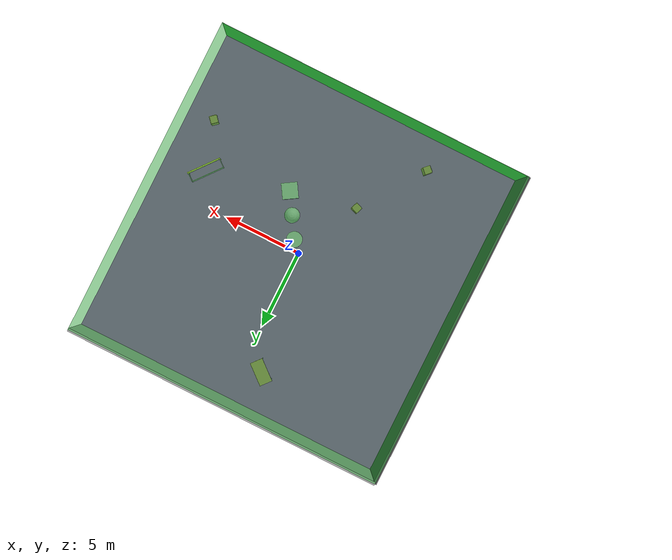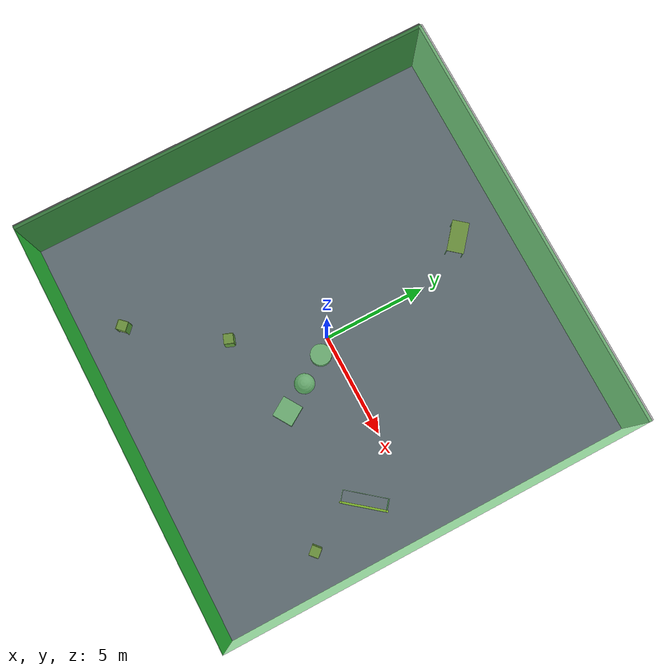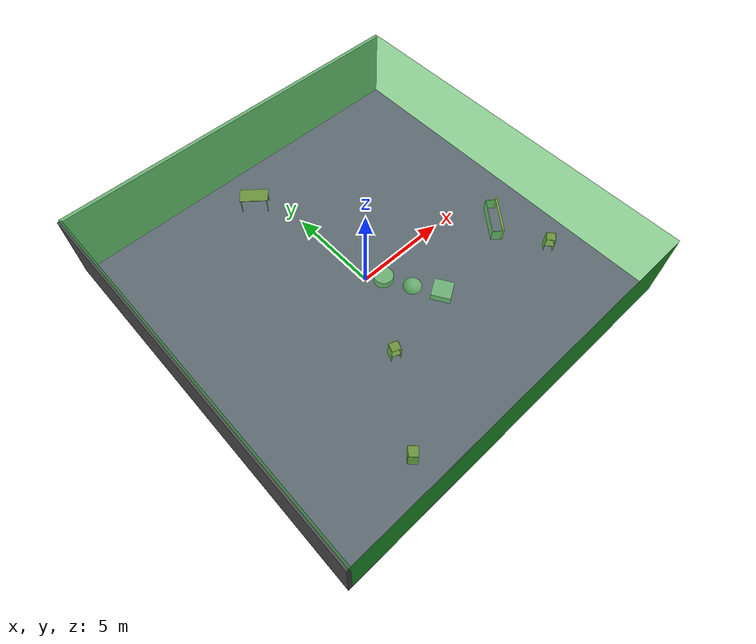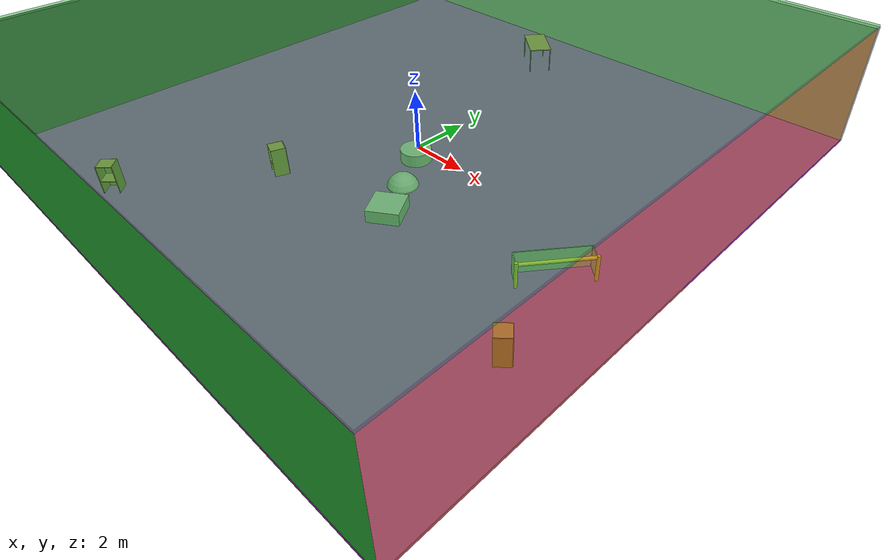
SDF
<sdf version="1.4">
 <world name="default">
  <physics type="ode">
   <max_step_size>0.001</max_step_size>
   <real_time_factor>1</real_time_factor>
   <real_time_update_rate>1000</real_time_update_rate>
   <gravity>0 0 -9.8</gravity>
  </physics>
  <scene><ambient>0.4 0.4 0.4 1</ambient><background>0.7 0.7 0.7 1</background><shadows>1</shadows></scene>
  <model name="Surrounding">
   <static>1</static>
   <link name="Ceiling">
    <collision name="Ceiling_Collision"><geometry><box><size>20 20 0.1</size></box></geometry></collision>
    <visual name="Ceiling_Visual">
     <geometry><box><size>20 20 0.1</size></box></geometry>
     <material>
      <script><uri>file://media/materials/scripts/gazebo.material</uri><name>Gazebo/GreenTransparent</name></script>
     </material>
    </visual>
    <pose>0 0 4.05 0 0 0</pose>
   </link>
   <link name="Wall_South">
    <collision name="Wall_South_Collision">
     <geometry><box><size>20 0 4</size></box></geometry>
     <pose>0 0 2 0 -0 0</pose>
    </collision>
    <visual name="Wall_South_Visual">
     <pose>0 0 2 0 -0 0</pose>
     <geometry><box><size>20 0 4</size></box></geometry>
     <material>
      <script><uri>file://media/materials/scripts/gazebo.material</uri><name>Gazebo/Green</name></script>
     </material>
    </visual>
    <velocity_decay><linear>0</linear><angular>0</angular></velocity_decay>
    <pose>0 -10 0 0 -0 0</pose>
   </link>
   <link name="Wall_East">
    <collision name="Wall_21_Collision">
     <geometry><box><size>20 0 4</size></box></geometry>
     <pose>0 0 2 0 -0 0</pose>
    </collision>
    <visual name="Wall_21_Visual">
     <pose>0 0 2 0 -0 0</pose>
     <geometry><box><size>20 0 4</size></box></geometry>
     <material>
      <script>
       <uri>file://media/materials/scripts/gazebo.material</uri>
       <name>Gazebo/OrangeTransparent</name>
      </script>
     </material>
    </visual>
    <velocity_decay><linear>0</linear><angular>0</angular></velocity_decay>
    <pose>10 0 0 0 -0 1.5708</pose>
   </link>
   <link name="Wall_North">
    <collision name="Wall_22_Collision">
     <geometry><box><size>20 0.2 4</size></box></geometry>
     <pose>0 0 2 0 -0 0</pose>
    </collision>
    <visual name="Wall_22_Visual">
     <pose>0 0 2 0 -0 0</pose>
     <geometry><box><size>20 0.2 4</size></box></geometry>
     <material>
      <script><uri>file://media/materials/scripts/gazebo.material</uri><name>Gazebo/LightOn</name></script>
     </material>
    </visual>
    <velocity_decay><linear>0</linear><angular>0</angular></velocity_decay>
    <pose>0 10 0 0 -0 0</pose>
   </link>
   <link name="Wall_West">
    <collision name="Wall_23_Collision">
     <geometry><box><size>20 0.2 4</size></box></geometry>
     <pose>0 0 2 0 -0 0</pose>
    </collision>
    <visual name="Wall_23_Visual">
     <pose>0 0 2 0 -0 0</pose>
     <geometry><box><size>20 0.2 4</size></box></geometry>
     <material>
      <script><uri>file://media/materials/scripts/gazebo.material</uri><name>Gazebo/DarkGrey</name></script>
     </material>
    </visual>
    <velocity_decay><linear>0</linear><angular>0</angular></velocity_decay>
    <pose>-10 0 0 0 0 -1.5708</pose>
   </link>
   <link name="Ground_link">
    <collision name="collision">
     <pose>0 0 .05 0 -0 0</pose>
     <geometry><box><size>20 20 0.1</size></box></geometry>
    </collision>
    <visual name="visual">
     <pose>0 0 .05 0 -0 0</pose>
     <geometry><box><size>20 20 0.1</size></box></geometry>
     <material>
      <script><uri>file://media/materials/scripts/gazebo.material</uri><name>Gazebo/PurpleGlow</name></script>
     </material>
    </visual>
   </link>
   <static>1</static>
  </model>
  <spherical_coordinates>
   <surface_model>EARTH_WGS84</surface_model>
   <latitude_deg>0</latitude_deg>
   <longitude_deg>0</longitude_deg>
   <elevation>0</elevation>
   <heading_deg>0</heading_deg>
  </spherical_coordinates>
  <light name="lightball_0" type="diffuse">
   <diffuse>0.8 0.8 0.8 1</diffuse>
   <specular>0.2 0.2 0.2 1</specular>
   <attenuation>
    <range>100</range>
    <constant>0.7</constant>
    <linear>0.01</linear>
    <quadratic>0.001</quadratic>
   </attenuation>
   <direction>-0.5 0.1 -0.9</direction>
   <pose>9.58898056026 -6.3900596213 0.745041591347 0 0 0</pose>
  </light>
  <light name="lightball_1" type="diffuse">
   <diffuse>0.8 0.8 0.8 1</diffuse>
   <specular>0.2 0.2 0.2 1</specular>
   <attenuation>
    <range>100</range>
    <constant>0.7</constant>
    <linear>0.01</linear>
    <quadratic>0.001</quadratic>
   </attenuation>
   <direction>-0.5 0.1 -0.9</direction>
   <pose>1.48560463946 5.40997261778 3.42142514226 0 0 0</pose>
  </light>
  <light name="lightball_2" type="diffuse">
   <diffuse>0.8 0.8 0.8 1</diffuse>
   <specular>0.2 0.2 0.2 1</specular>
   <attenuation>
    <range>100</range>
    <constant>0.7</constant>
    <linear>0.01</linear>
    <quadratic>0.001</quadratic>
   </attenuation>
   <direction>-0.5 0.1 -0.9</direction>
   <pose>2.82798622386 -4.88676322867 2.51087687519 0 0 0</pose>
  </light>
  <light name="lightball_3" type="diffuse">
   <diffuse>0.8 0.8 0.8 1</diffuse>
   <specular>0.2 0.2 0.2 1</specular>
   <attenuation>
    <range>100</range>
    <constant>0.7</constant>
    <linear>0.01</linear>
    <quadratic>0.001</quadratic>
   </attenuation>
   <direction>-0.5 0.1 -0.9</direction>
   <pose>-6.63804291665 7.25043719288 0.512809730193 0 0 0</pose>
  </light>
  <include><uri>model://cabinet</uri><pose>-4.72146769635 -8.05322738268 0 0 0 2.37343048678</pose></include>
  <include><uri>model://cabinet</uri><pose>-1.92139386654 -4.05515541823 0 0 0 1.21780036914</pose></include>
  <include><uri>model://table</uri><pose>-1.2065754678 7.48364560499 0 0 0 2.44640106491</pose></include>
  <include>
   <uri>model://textured_shapes</uri>
   <pose>1.41447369944 -1.91990940743 0 0 0 0.558446765465</pose>
  </include>
  <include><uri>model://cabinet</uri><pose>8.27527078177 -4.96327383777 0 0 0 0.72172950103</pose></include>
  <include>
   <uri>model://robocup_3Dsim_goal</uri>
   <pose>7.57119770268 -2.16603353244 0 0 0 2.46327880073</pose>
  </include>
 </world>
</sdf>

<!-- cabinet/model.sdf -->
<sdf version="1.5">
  <model name="cabinet">
    <static>true</static>
    <link name="cabinet_bottom_plate">
      <inertial>
        <pose>0 0 -1 0 0 0</pose>
        <inertia>
          <ixx>2.050000</ixx>
          <ixy>0</ixy>
          <ixz>0</ixz>
          <iyy>2.050000</iyy>
          <iyz>0</iyz>
          <izz>2.050000</izz>
        </inertia>
        <mass>25.000000</mass>
      </inertial>
      <collision name="cabinet_bottom_plate_geom">
        <pose>0 0 0.010000 0 0 0</pose>
        <geometry>
          <box>
            <size>0.450000 0.450000 0.020000</size>
          </box>
        </geometry>
      </collision>
      <visual name="cabinet_bottom_plate_geom_visual">
        <pose>0 0 0.010000 0 0 0</pose>
        <geometry>
          <box>
            <size>0.450000 0.450000 0.020000</size>
          </box>
        </geometry>
        <material>
          <script>
            <uri>model://media/materials/scripts/gazebo.material</uri>
            <name>Gazebo/Wood</name>
          </script>
        </material>
      </visual>
      <collision name="cabinet_bottom_plate_geom_cabinet_back_plate">
        <pose>0.235000 0 0.510000 0 0 0</pose>
        <geometry>
          <box>
            <size>0.020000 0.450000 1.020000</size>
          </box>
        </geometry>
      </collision>
      <visual name="cabinet_bottom_plate_geom_cabinet_back_plate_visual">
        <pose>0.235000 0 0.510000 0 0 0</pose>
        <geometry>
          <box>
            <size>0.020000 0.450000 1.020000</size>
          </box>
        </geometry>
        <material>
          <script>
            <uri>model://media/materials/scripts/gazebo.material</uri>
            <name>Gazebo/Wood</name>
          </script>
        </material>
      </visual>
      <collision name="cabinet_bottom_plate_geom_cabinet_left_plate">
        <pose>0 0.235000 0.510000 0 0 0</pose>
        <geometry>
          <box>
            <size>0.450000 0.020000 1.020000</size>
          </box>
        </geometry>
      </collision>
      <visual name="cabinet_bottom_plate_geom_cabinet_left_plate_visual">
        <pose>0 0.235000 0.510000 0 0 0</pose>
        <geometry>
          <box>
            <size>0.450000 0.020000 1.020000</size>
          </box>
        </geometry>
        <material>
          <script>
            <uri>model://media/materials/scripts/gazebo.material</uri>
            <name>Gazebo/Wood</name>
          </script>
        </material>
      </visual>
      <collision name="cabinet_bottom_plate_geom_cabinet_middle_plate">
        <pose>0 0 0.510000 0 0 0</pose>
        <geometry>
          <box>
            <size>0.450000 0.450000 0.020000</size>
          </box>
        </geometry>
      </collision>
      <visual name="cabinet_bottom_plate_geom_cabinet_middle_plate_visual">
        <pose>0 0 0.510000 0 0 0</pose>
        <geometry>
          <box>
            <size>0.450000 0.450000 0.020000</size>
          </box>
        </geometry>
        <material>
          <script>
            <uri>model://media/materials/scripts/gazebo.material</uri>
            <name>Gazebo/Wood</name>
          </script>
        </material>
      </visual>
      <collision name="cabinet_bottom_plate_geom_cabinet_right_plate">
        <pose>0 -0.235000 0.510000 0 0 0</pose>
        <geometry>
          <box>
            <size>0.450000 0.020000 1.020000</size>
          </box>
        </geometry>
      </collision>
      <visual name="cabinet_bottom_plate_geom_cabinet_right_plate_visual">
        <pose>0 -0.235000 0.510000 0 0 0</pose>
        <geometry>
          <box>
            <size>0.450000 0.020000 1.020000</size>
          </box>
        </geometry>
        <material>
          <script>
            <uri>model://media/materials/scripts/gazebo.material</uri>
            <name>Gazebo/Wood</name>
          </script>
        </material>
      </visual>
      <collision name="cabinet_bottom_plate_geom_cabinet_top_plate">
        <pose>0 0 1.010000 0 0 0</pose>
        <geometry>
          <box>
            <size>0.450000 0.450000 0.020000</size>
          </box>
        </geometry>
      </collision>
      <visual name="cabinet_bottom_plate_geom_cabinet_top_plate_visual">
        <pose>0 0 1.010000 0 0 0</pose>
        <geometry>
          <box>
            <size>0.450000 0.450000 0.020000</size>
          </box>
        </geometry>
        <material>
          <script>
            <uri>model://media/materials/scripts/gazebo.material</uri>
            <name>Gazebo/Wood</name>
          </script>
        </material>
      </visual>
    </link>
  </model>
</sdf>

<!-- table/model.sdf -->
<sdf version="1.5">
  <model name="table">
    <static>true</static>
    <link name="link">
      <collision name="surface">
        <pose>0 0 1.0 0 0 0</pose>
        <geometry>
          <box>
            <size>1.5 0.8 0.03</size>
          </box>
        </geometry>
        <surface>
          <friction>
            <ode>
              <mu>0.6</mu>
              <mu2>0.6</mu2>
            </ode>
          </friction>
        </surface>
      </collision>
      <visual name="visual1">
        <pose>0 0 1.0 0 0 0</pose>
        <geometry>
          <box>
            <size>1.5 0.8 0.03</size>
          </box>
        </geometry>
        <material>
          <script>
            <uri>model://media/materials/scripts/gazebo.material</uri>
            <name>Gazebo/Wood</name>
          </script>
        </material>
      </visual>
      <collision name="front_left_leg">
        <pose>0.68 0.38 0.5 0 0 0</pose>
        <geometry>
          <cylinder>
            <radius>0.02</radius>
            <length>1.0</length>
          </cylinder>
        </geometry>
      </collision>
      <visual name="front_left_leg">
        <pose>0.68 0.38 0.5 0 0 0</pose>
        <geometry>
          <cylinder>
            <radius>0.02</radius>
            <length>1.0</length>
          </cylinder>
        </geometry>
        <material>
          <script>
            <uri>model://media/materials/scripts/gazebo.material</uri>
            <name>Gazebo/Grey</name>
          </script>
        </material>
      </visual>
      <collision name="front_right_leg">
        <pose>0.68 -0.38 0.5 0 0 0</pose>
        <geometry>
          <cylinder>
            <radius>0.02</radius>
            <length>1.0</length>
          </cylinder>
        </geometry>
      </collision>
      <visual name="front_right_leg">
        <pose>0.68 -0.38 0.5 0 0 0</pose>
        <geometry>
          <cylinder>
            <radius>0.02</radius>
            <length>1.0</length>
          </cylinder>
        </geometry>
        <material>
          <script>
            <uri>model://media/materials/scripts/gazebo.material</uri>
            <name>Gazebo/Grey</name>
          </script>
        </material>
      </visual>
      <collision name="back_right_leg">
        <pose>-0.68 -0.38 0.5 0 0 0</pose>
        <geometry>
          <cylinder>
            <radius>0.02</radius>
            <length>1.0</length>
          </cylinder>
        </geometry>
      </collision>
      <visual name="back_right_leg">
        <pose>-0.68 -0.38 0.5 0 0 0</pose>
        <geometry>
          <cylinder>
            <radius>0.02</radius>
            <length>1.0</length>
          </cylinder>
        </geometry>
        <material>
          <script>
            <uri>model://media/materials/scripts/gazebo.material</uri>
            <name>Gazebo/Grey</name>
          </script>
        </material>
      </visual>
      <collision name="back_left_leg">
        <pose>-0.68 0.38 0.5 0 0 0</pose>
        <geometry>
          <cylinder>
            <radius>0.02</radius>
            <length>1.0</length>
          </cylinder>
        </geometry>
      </collision>
      <visual name="back_left_leg">
        <pose>-0.68 0.38 0.5 0 0 0</pose>
        <geometry>
          <cylinder>
            <radius>0.02</radius>
            <length>1.0</length>
          </cylinder>
        </geometry>
        <material>
          <script>
            <uri>model://media/materials/scripts/gazebo.material</uri>
            <name>Gazebo/Grey</name>
          </script>
        </material>
      </visual>
    </link>
  </model>
</sdf>

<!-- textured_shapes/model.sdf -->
<sdf version="1.6">
  <model name="textured_shapes">
    <pose>0 0 0.5 0 0 0</pose>
    <link name="box">
      <pose>0 -1.5 0 0 0 0</pose>
      <collision name="collision">
        <geometry>
          <box>
            <size>1 1 1</size>
          </box>
        </geometry>
      </collision>
      <visual name="visual">
        <geometry>
          <box>
            <size>1 1 1</size>
          </box>
        </geometry>
        <material>
          <script>
            <uri>model://../model_source/models/textured_shapes/materials/scripts</uri>
            <uri>model://../model_source/models/textured_shapes/materials/textures</uri>
            <name>TexturedShape/Squares</name>
          </script>
        </material>
      </visual>
    </link>
    <link name="sphere">
      <collision name="collision">
        <geometry>
          <sphere>
            <radius>0.5</radius>
          </sphere>
        </geometry>
      </collision>
      <visual name="visual">
        <geometry>
          <sphere>
            <radius>0.5</radius>
          </sphere>
        </geometry>
        <material>
          <script>
            <uri>model://../model_source/models/textured_shapes/materials/scripts</uri>
            <uri>model://../model_source/models/textured_shapes/materials/textures</uri>
            <name>TexturedShape/Squares</name>
          </script>
        </material>
      </visual>
    </link>
    <link name="cylinder">
      <pose>0 1.5 0 0 0 0</pose>
      <collision name="collision">
        <geometry>
          <cylinder>
            <radius>0.5</radius>
            <length>1</length>
          </cylinder>
        </geometry>
      </collision>
      <visual name="visual">
        <geometry>
          <cylinder>
            <radius>0.5</radius>
            <length>1</length>
          </cylinder>
        </geometry>
        <material>
          <script>
            <uri>model://../model_source/models/textured_shapes/materials/scripts</uri>
            <uri>model://../model_source/models/textured_shapes/materials/textures</uri>
            <name>TexturedShape/Squares</name>
          </script>
        </material>
      </visual>
    </link>
  </model>
</sdf>

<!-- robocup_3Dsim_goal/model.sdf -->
<sdf version="1.5">
  <model name="robocup_3d_goal">
    <static>true</static>
    <link name="left_post">
      <pose>0 1.05 0.45 0 0 0</pose>
      <collision name="collision">
        <geometry>
          <cylinder>
            <radius>0.05</radius>
            <length>0.9</length>
          </cylinder>
        </geometry>
      </collision>
      <visual name="visual">
        <geometry>
          <cylinder>
            <radius>0.05</radius>
            <length>0.9</length>
          </cylinder>
        </geometry>
        <material>
          <script>
            <uri>file://media/materials/scripts/gazebo.material</uri>
            <name>Gazebo/ZincYellow</name>
          </script>
        </material>
      </visual>
    </link>
    <link name="left_support_horiz_lower">
      <pose>0.30 1.05 0.01 0 0 0</pose>
      <collision name="collision">
        <geometry>
          <box>
            <size>0.50 0.02 0.02</size>
          </box>
        </geometry>
      </collision>
      <visual name="visual">
        <geometry>
          <box>
            <size>0.50 0.02 0.02</size>
          </box>
        </geometry>
        <material>
          <script>
            <uri>file://media/materials/scripts/gazebo.material</uri>
            <name>Gazebo/White</name>
          </script>
        </material>
      </visual>
    </link>
    <link name="left_support_horiz_upper">
      <pose>0.30 1.05 0.79 0 0 0</pose>
      <collision name="collision">
        <geometry>
          <box>
            <size>0.50 0.02 0.02</size>
          </box>
        </geometry>
      </collision>
      <visual name="visual">
        <geometry>
          <box>
            <size>0.50 0.02 0.02</size>
          </box>
        </geometry>
        <material>
          <script>
            <uri>file://media/materials/scripts/gazebo.material</uri>
            <name>Gazebo/White</name>
          </script>
        </material>
      </visual>
    </link>
    <link name="left_support_vertical">
      <pose>0.56 1.05 0.4 0 1.5708 0</pose>
      <collision name="collision">
        <geometry>
          <box>
            <size>0.80 0.02 0.02</size>
          </box>
        </geometry>
      </collision>
      <visual name="visual">
        <geometry>
          <box>
            <size>0.80 0.02 0.02</size>
          </box>
        </geometry>
        <material>
          <script>
            <uri>file://media/materials/scripts/gazebo.material</uri>
            <name>Gazebo/White</name>
          </script>
        </material>
      </visual>
    </link>
    <link name="right_support_horiz_lower">
      <pose>0.30 -1.05 0.01 0 0 0</pose>
      <collision name="collision">
        <geometry>
          <box>
            <size>0.50 0.02 0.02</size>
          </box>
        </geometry>
      </collision>
      <visual name="visual">
        <geometry>
          <box>
            <size>0.50 0.02 0.02</size>
          </box>
        </geometry>
        <material>
          <script>
            <uri>file://media/materials/scripts/gazebo.material</uri>
            <name>Gazebo/White</name>
          </script>
        </material>
      </visual>
    </link>
    <link name="right_support_horiz_upper">
      <pose>0.30 -1.05 0.79 0 0 0</pose>
      <collision name="collision">
        <geometry>
          <box>
            <size>0.50 0.02 0.02</size>
          </box>
        </geometry>
      </collision>
      <visual name="visual">
        <geometry>
          <box>
            <size>0.50 0.02 0.02</size>
          </box>
        </geometry>
        <material>
          <script>
            <uri>file://media/materials/scripts/gazebo.material</uri>
            <name>Gazebo/White</name>
          </script>
        </material>
      </visual>
    </link>
    <link name="right_support_vertical">
      <pose>0.56 -1.05 0.4 0 1.5708 0</pose>
      <collision name="collision">
        <geometry>
          <box>
            <size>0.80 0.02 0.02</size>
          </box>
        </geometry>
      </collision>
      <visual name="visual">
        <geometry>
          <box>
            <size>0.80 0.02 0.02</size>
          </box>
        </geometry>
        <material>
          <script>
            <uri>file://media/materials/scripts/gazebo.material</uri>
            <name>Gazebo/White</name>
          </script>
        </material>
      </visual>
    </link>
    <link name="center_support_horiz_lower">
      <pose>0.56 0 0.01 0 1.5708 0</pose>
      <collision name="collision">
        <geometry>
          <box>
            <size>0.02 2.08 0.02</size>
          </box>
        </geometry>
      </collision>
      <visual name="visual">
        <geometry>
          <box>
            <size>0.02 2.08 0.02</size>
          </box>
        </geometry>
        <material>
          <script>
            <uri>file://media/materials/scripts/gazebo.material</uri>
            <name>Gazebo/White</name>
          </script>
        </material>
      </visual>
    </link>
    <link name="center_support_horiz_upper">
      <pose>0.56 0 0.79 0 1.5708 0</pose>
      <collision name="collision">
        <geometry>
          <box>
            <size>0.02 2.08 0.02</size>
          </box>
        </geometry>
      </collision>
      <visual name="visual">
        <geometry>
          <box>
            <size>0.02 2.08 0.02</size>
          </box>
        </geometry>
        <material>
          <script>
            <uri>file://media/materials/scripts/gazebo.material</uri>
            <name>Gazebo/White</name>
          </script>
        </material>
      </visual>
    </link>
    <link name="right_post">
      <pose>0 -1.05 0.45 0 0 0</pose>
      <collision name="collision">
        <geometry>
          <cylinder>
            <radius>0.05</radius>
            <length>0.9</length>
          </cylinder>
        </geometry>
      </collision>
      <visual name="visual">
        <geometry>
          <cylinder>
            <radius>0.05</radius>
            <length>0.9</length>
          </cylinder>
        </geometry>
        <material>
          <script>
            <uri>file://media/materials/scripts/gazebo.material</uri>
            <name>Gazebo/ZincYellow</name>
          </script>
        </material>
      </visual>
    </link>
    <link name="crossbar">
      <pose>0 0 0.85 1.57 1.57 0</pose>
      <collision name="collision">
        <geometry>
          <cylinder>
            <radius>0.05</radius>
            <length>2.0</length>
          </cylinder>
        </geometry>
      </collision>
      <visual name="visual">
        <geometry>
          <cylinder>
            <radius>0.05</radius>
            <length>2.0</length>
          </cylinder>
        </geometry>
        <material>
          <script>
            <uri>file://media/materials/scripts/gazebo.material</uri>
            <name>Gazebo/ZincYellow</name>
          </script>
        </material>
      </visual>
    </link>
    <link name="center_net">
      <pose>0.56 0 0.40 0 0 0</pose>
      <collision name="collision">
        <geometry>
          <box>
            <size>0.01 2.1 0.80</size>
          </box>
        </geometry>
      </collision>
      <visual name="visual">
        <geometry>
          <box>
            <size>0.01 2.1 0.80</size>
          </box>
        </geometry>
        <material>
          <script>
            <uri>model://../model_source/models/robocup09_spl_field/materials/scripts/</uri>
            <uri>model://../model_source/models/robocup09_spl_field/materials/textures/</uri>
            <name>RoboCup/Net</name>
          </script>
        </material>
      </visual>
    </link>
    <link name="left_net">
      <pose>0.30 1.05 0.40 0 0 0</pose>
      <collision name="collision">
        <geometry>
          <box>
            <size>0.50 0.01 0.76</size>
          </box>
        </geometry>
      </collision>
      <visual name="visual">
        <geometry>
          <box>
            <size>0.50 0.01 0.76</size>
          </box>
        </geometry>
        <material>
          <script>
            <uri>model://../model_source/models/robocup09_spl_field/materials/scripts/</uri>
            <uri>model://../model_source/models/robocup09_spl_field/materials/textures/</uri>
            <name>RoboCup/Net</name>
          </script>
        </material>
      </visual>
    </link>
    <link name="right_net">
      <pose>0.30 -1.05 0.40 0 0 0</pose>
      <collision name="collision">
        <geometry>
          <box>
            <size>0.50 0.01 0.76</size>
          </box>
        </geometry>
      </collision>
      <visual name="visual">
        <geometry>
          <box>
            <size>0.50 0.01 0.76</size>
          </box>
        </geometry>
        <material>
          <script>
            <uri>model://../model_source/models/robocup09_spl_field/materials/scripts/</uri>
            <uri>model://../model_source/models/robocup09_spl_field/materials/textures/</uri>
            <name>RoboCup/Net</name>
          </script>
        </material>
      </visual>
    </link>
  </model>
</sdf>
